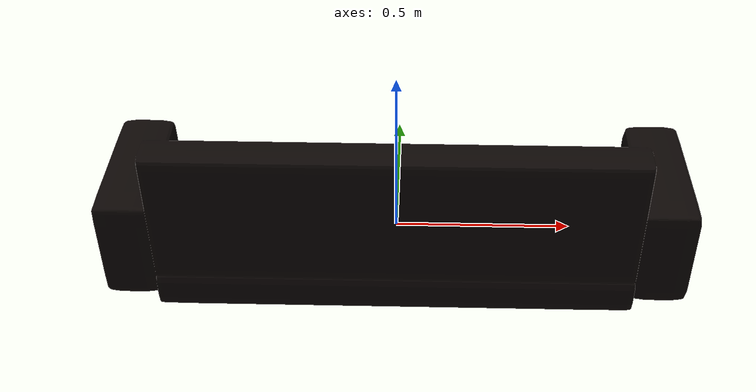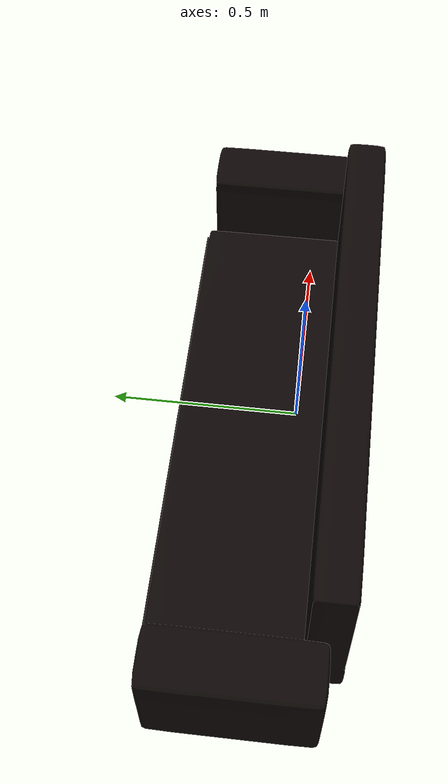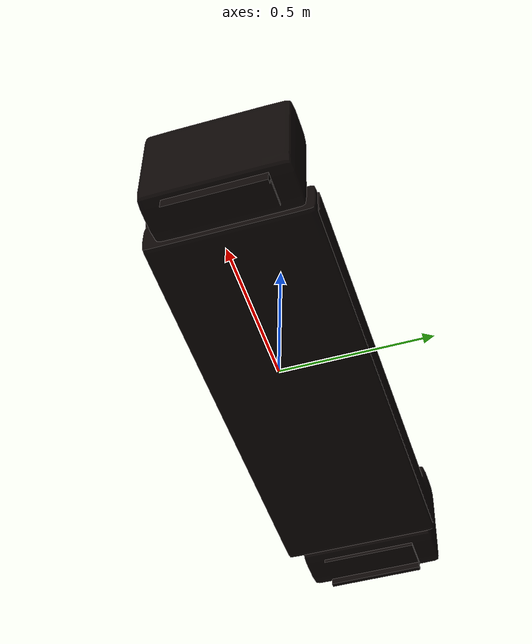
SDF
<?xml version="1.0" ?>
<sdf version="1.5">
  <model name="lc_sofa">
    <static>true</static>
    <link name="sofa_link">
        <collision name="sofa_collision">
         <geometry>
	          <box>
                <size>1.70 0.51 0.55</size>
            </box>
        </geometry>
      </collision>

      <visual name="sofa_mesh">
        <cast_shadows>true</cast_shadows>
        <geometry>
            <mesh>
                <uri>model://lc_sofa/meshes/sofa.dae</uri>
            </mesh>
        </geometry>
	      <material>
          <script>
            <uri>model://lc_sofa/materials/scripts</uri>
            <uri>model://lc_sofa/materials/textures</uri>
            <name>sofaMat/Diffuse</name>
          </script>
        </material>
      </visual>
    </link>
  </model>
</sdf>
